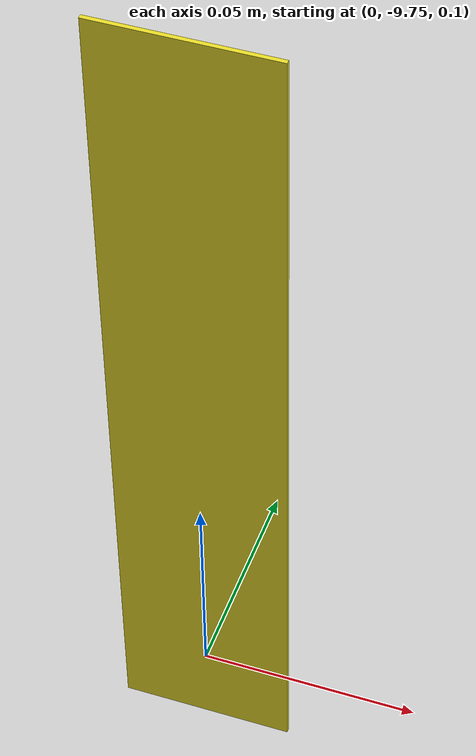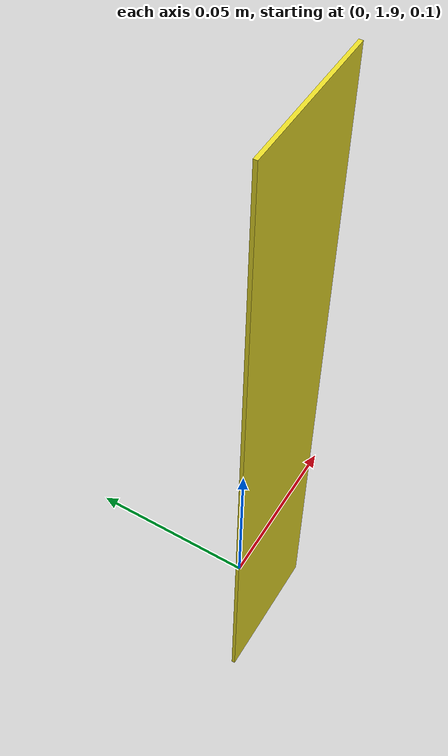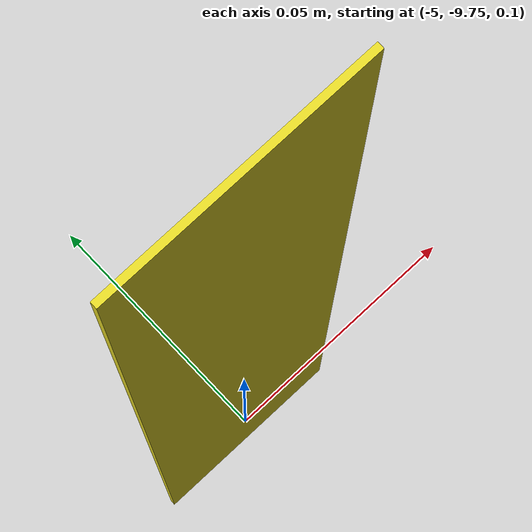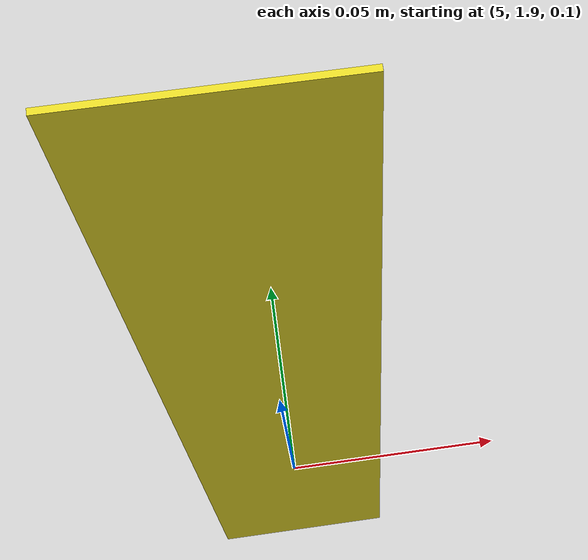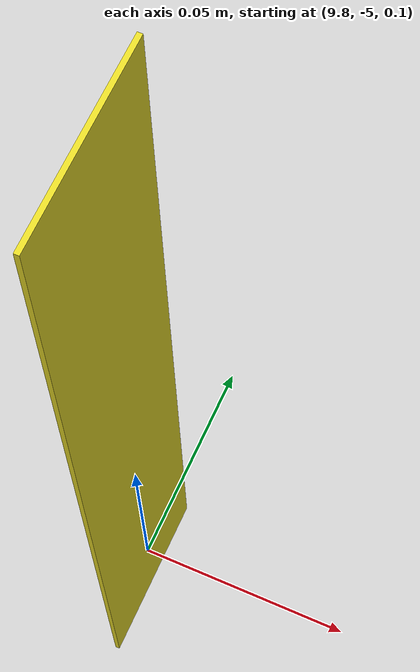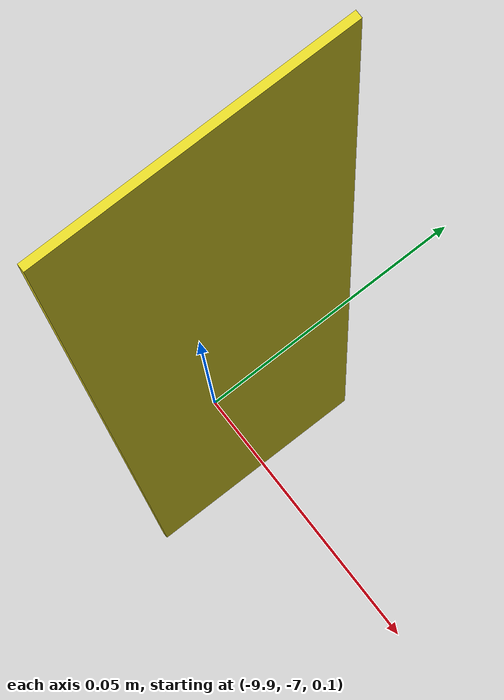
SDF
<!--
Copyright 2021 RUVU Robotics B.V.
-->

<sdf version='1.6'>
  <world name="default">
    <scene>
      <ambient>0.4 0.4 0.4 1</ambient>
      <background>0.7 0.7 0.7 1</background>
      <shadows>true</shadows>
    </scene>

    <!-- A global light source -->
    <include>
      <uri>model://sun</uri>
    </include>

    <!-- A ground plane -->
    <include>
      <uri>model://ground_plane</uri>
    </include>

    <!-- Reflectors -->
    <include><uri>model://reflector</uri><name>reflector0</name><pose>-9 1.89 0.18 0 0 1.5708</pose></include>
    <include><uri>model://reflector</uri><name>reflector1</name><pose>-5 1.89 0.18 0 0 1.5708</pose></include>
    <include><uri>model://reflector</uri><name>reflector2</name><pose>0 1.89 0.18 0 0 1.5708</pose></include>
    <include><uri>model://reflector</uri><name>reflector3</name><pose>5 1.89 0.18 0 0 1.5708</pose></include>
    <include><uri>model://reflector</uri><name>reflector4</name><pose>9.8 0 0.18 0 0 0</pose></include>
    <include><uri>model://reflector</uri><name>reflector5</name><pose>9.8 -5 0.18 0 0 0</pose></include>
    <include><uri>model://reflector</uri><name>reflector6</name><pose>5 -9.75 0.18 0 0 1.5708</pose></include>
    <include><uri>model://reflector</uri><name>reflector7</name><pose>0 -9.75 0.18 0 0 1.5708</pose></include>
    <include><uri>model://reflector</uri><name>reflector8</name><pose>-5 -9.75 0.18 0 0 1.5708</pose></include>
    <include><uri>model://reflector</uri><name>reflector9</name><pose>-9.89 -7 0.18 0 0 0</pose></include>
    <include><uri>model://reflector</uri><name>reflector10</name><pose>-4.35 -3 0.18 0 0 0</pose></include>
  </world>
</sdf>

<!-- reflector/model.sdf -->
<!--
Copyright 2021 RUVU Robotics B.V.
-->

<sdf version="1.4">
  <model name="reflector">
    <pose>0 0 0 0 0 0</pose>
    <static>true</static>
    <link name="link">
      <inertial>
        <mass>0.01</mass>
        <inertia>
          <ixx>0.001</ixx>
          <ixy>0.0</ixy>
          <ixz>0.0</ixz>
          <iyy>0.001</iyy>
          <iyz>0.0</iyz>
          <izz>0.001</izz>
        </inertia>
      </inertial>
      <collision name="collision">
        <geometry>
          <box>
            <size>0.001 0.04 0.2</size>
          </box>
        </geometry>
        <laser_retro>20000</laser_retro>
      </collision>
      <visual name="visual">
        <geometry>
          <box>
            <size>0.001 0.04 0.2</size>
          </box>
        </geometry>
        <material>
          <script>
            <name>Gazebo/YellowGlow</name>
          </script>
        </material>
      </visual>
    </link>
  </model>
</sdf>
